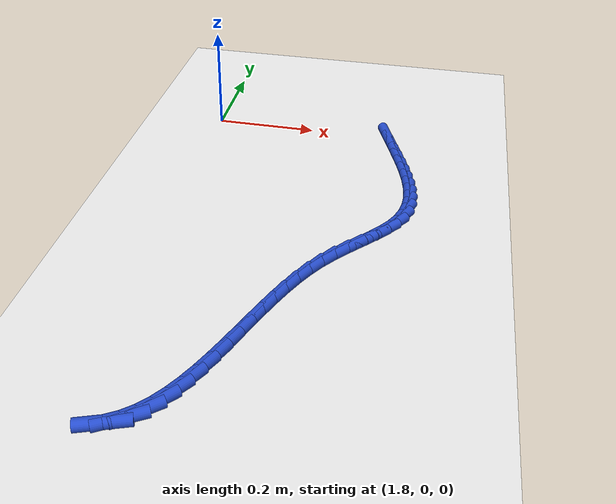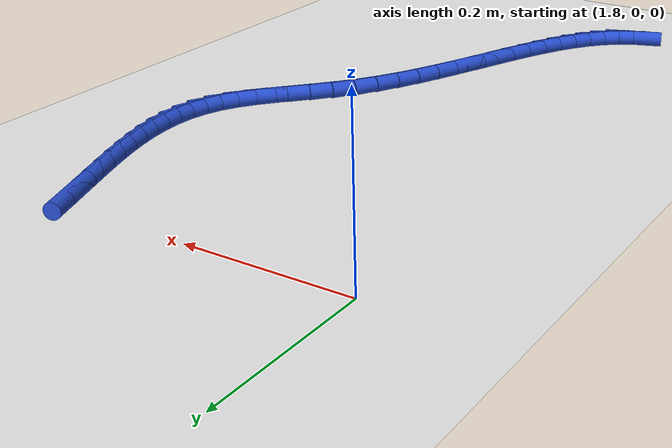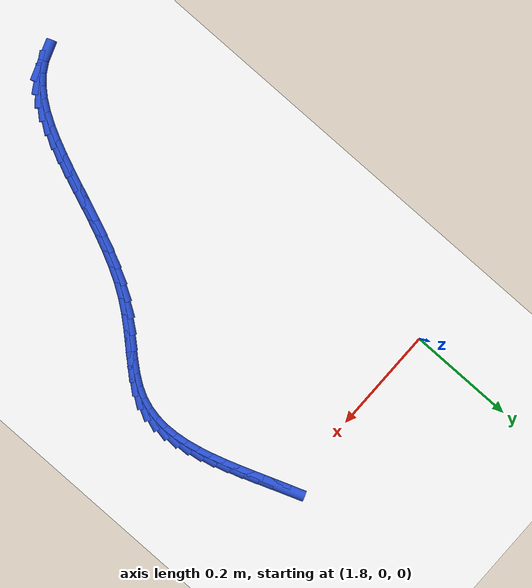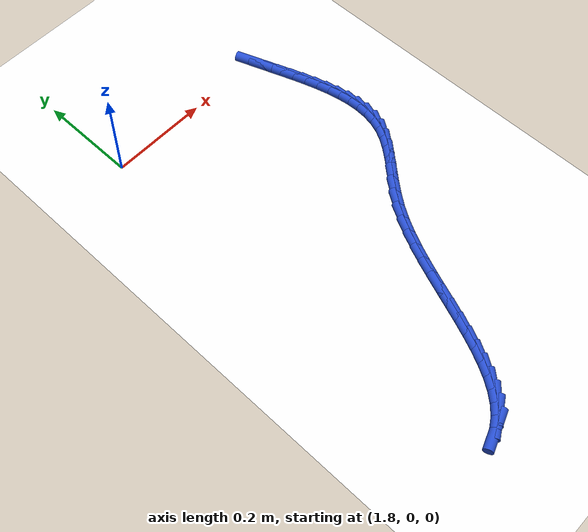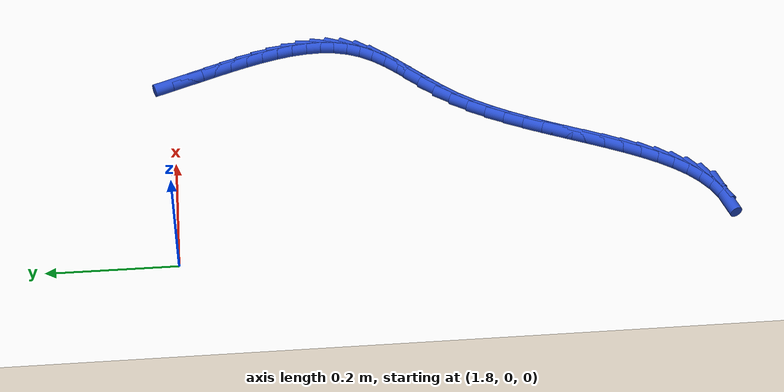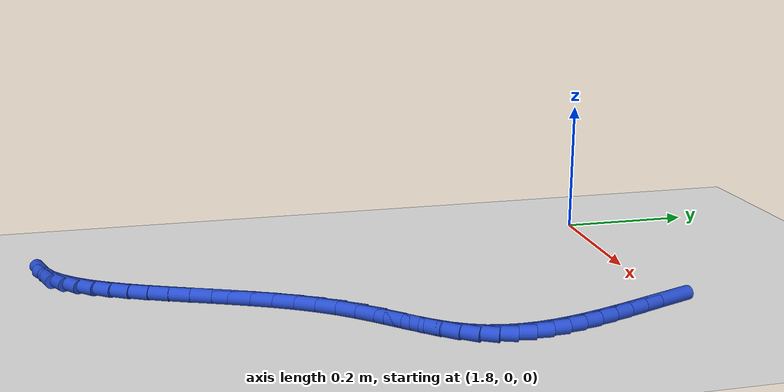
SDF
<sdf version="1.6">
 <world name="default">
  <model name="ground_plane">
   <static>1</static>
   <link name="link">
    <collision name="collision">
     <geometry><plane><normal>0 0 1</normal><size>100 100</size></plane></geometry>
     <surface><friction><ode><mu>100</mu><mu2>50</mu2></ode></friction></surface>
    </collision>
    <visual name="visual">
     <cast_shadows>0</cast_shadows>
     <geometry><plane><normal>0 0 1</normal><size>100 100</size></plane></geometry>
     <material>
      <script><uri>file://media/materials/scripts/gazebo.material</uri><name>Gazebo/WhiteGlow</name></script>
     </material>
    </visual>
   </link>
  </model>
  <model name="line">
   <link name="link_139">
    <pose>2.1594408791345914 -0.0069270119873001655 0.01 0 1.57 -1.221876624173199</pose>
    <collision name="collision">
     <geometry><cylinder><radius>0.01</radius><length>0.08</length></cylinder></geometry>
    </collision>
    <visual name="visual">
     <material>
      <script><name>Gazebo/Blue</name><uri>file://media/materials/scripts/gazebo.material</uri></script>
     </material>
     <geometry><cylinder><radius>0.01</radius><length>0.08</length></cylinder></geometry>
    </visual>
   </link>
   <link name="link_140">
    <pose>2.1694202808281142 -0.034357665709475085 0.01 0 1.57 -1.219690596151822</pose>
    <collision name="collision">
     <geometry><cylinder><radius>0.01</radius><length>0.08</length></cylinder></geometry>
    </collision>
    <visual name="visual">
     <material>
      <script><name>Gazebo/Blue</name><uri>file://media/materials/scripts/gazebo.material</uri></script>
     </material>
     <geometry><cylinder><radius>0.01</radius><length>0.08</length></cylinder></geometry>
    </visual>
   </link>
   <link name="link_141">
    <pose>2.1793073650528063 -0.06135075421853981 0.01 0 1.57 -1.2271023218623611</pose>
    <collision name="collision">
     <geometry><cylinder><radius>0.01</radius><length>0.08</length></cylinder></geometry>
    </collision>
    <visual name="visual">
     <material>
      <script><name>Gazebo/Blue</name><uri>file://media/materials/scripts/gazebo.material</uri></script>
     </material>
     <geometry><cylinder><radius>0.01</radius><length>0.08</length></cylinder></geometry>
    </visual>
   </link>
   <link name="link_142">
    <pose>2.1888005033595586 -0.08787541539835497 0.01 0 1.57 -1.2448175884491137</pose>
    <collision name="collision">
     <geometry><cylinder><radius>0.01</radius><length>0.08</length></cylinder></geometry>
    </collision>
    <visual name="visual">
     <material>
      <script><name>Gazebo/Blue</name><uri>file://media/materials/scripts/gazebo.material</uri></script>
     </material>
     <geometry><cylinder><radius>0.01</radius><length>0.08</length></cylinder></geometry>
    </visual>
   </link>
   <link name="link_143">
    <pose>2.197598067299262 -0.11390078713278073 0.01 0 1.57 -1.2738862621349742</pose>
    <collision name="collision">
     <geometry><cylinder><radius>0.01</radius><length>0.08</length></cylinder></geometry>
    </collision>
    <visual name="visual">
     <material>
      <script><name>Gazebo/Blue</name><uri>file://media/materials/scripts/gazebo.material</uri></script>
     </material>
     <geometry><cylinder><radius>0.01</radius><length>0.08</length></cylinder></geometry>
    </visual>
   </link>
   <link name="link_144">
    <pose>2.2053984284228068 -0.13939600730567736 0.01 0 1.57 -1.3157283079231916</pose>
    <collision name="collision">
     <geometry><cylinder><radius>0.01</radius><length>0.08</length></cylinder></geometry>
    </collision>
    <visual name="visual">
     <material>
      <script><name>Gazebo/Blue</name><uri>file://media/materials/scripts/gazebo.material</uri></script>
     </material>
     <geometry><cylinder><radius>0.01</radius><length>0.08</length></cylinder></geometry>
    </visual>
   </link>
   <link name="link_145">
    <pose>2.2118999582810845 -0.16433021380090512 0.01 0 1.57 -1.3721132191907</pose>
    <collision name="collision">
     <geometry><cylinder><radius>0.01</radius><length>0.08</length></cylinder></geometry>
    </collision>
    <visual name="visual">
     <material>
      <script><name>Gazebo/Blue</name><uri>file://media/materials/scripts/gazebo.material</uri></script>
     </material>
     <geometry><cylinder><radius>0.01</radius><length>0.08</length></cylinder></geometry>
    </visual>
   </link>
   <link name="link_146">
    <pose>2.216801028424986 -0.18867254450232482 0.01 0 1.57 -1.4450288560595679</pose>
    <collision name="collision">
     <geometry><cylinder><radius>0.01</radius><length>0.08</length></cylinder></geometry>
    </collision>
    <visual name="visual">
     <material>
      <script><name>Gazebo/Blue</name><uri>file://media/materials/scripts/gazebo.material</uri></script>
     </material>
     <geometry><cylinder><radius>0.01</radius><length>0.08</length></cylinder></geometry>
    </visual>
   </link>
   <link name="link_147">
    <pose>2.219800010405403 -0.2123921372937953 0.01 0 1.57 -1.5363321489758395</pose>
    <collision name="collision">
     <geometry><cylinder><radius>0.01</radius><length>0.08</length></cylinder></geometry>
    </collision>
    <visual name="visual">
     <material>
      <script><name>Gazebo/Blue</name><uri>file://media/materials/scripts/gazebo.material</uri></script>
     </material>
     <geometry><cylinder><radius>0.01</radius><length>0.08</length></cylinder></geometry>
    </visual>
   </link>
   <link name="link_148">
    <pose>2.2205952757732255 -0.23545813005917754 0.01 0 1.57 1.494538648122432</pose>
    <collision name="collision">
     <geometry><cylinder><radius>0.01</radius><length>0.08</length></cylinder></geometry>
    </collision>
    <visual name="visual">
     <material>
      <script><name>Gazebo/Blue</name><uri>file://media/materials/scripts/gazebo.material</uri></script>
     </material>
     <geometry><cylinder><radius>0.01</radius><length>0.08</length></cylinder></geometry>
    </visual>
   </link>
   <link name="link_149">
    <pose>2.2188851960793445 -0.25783966068233155 0.01 0 1.57 1.3652567267571938</pose>
    <collision name="collision">
     <geometry><cylinder><radius>0.01</radius><length>0.08</length></cylinder></geometry>
    </collision>
    <visual name="visual">
     <material>
      <script><name>Gazebo/Blue</name><uri>file://media/materials/scripts/gazebo.material</uri></script>
     </material>
     <geometry><cylinder><radius>0.01</radius><length>0.08</length></cylinder></geometry>
    </visual>
   </link>
   <link name="link_150">
    <pose>2.2143681428746516 -0.2795058670471178 0.01 0 1.57 1.2212497702752323</pose>
    <collision name="collision">
     <geometry><cylinder><radius>0.01</radius><length>0.08</length></cylinder></geometry>
    </collision>
    <visual name="visual">
     <material>
      <script><name>Gazebo/Blue</name><uri>file://media/materials/scripts/gazebo.material</uri></script>
     </material>
     <geometry><cylinder><radius>0.01</radius><length>0.08</length></cylinder></geometry>
    </visual>
   </link>
   <link name="link_151">
    <pose>2.2067424877100374 -0.3004258870373965 0.01 0 1.57 1.0714104292153046</pose>
    <collision name="collision">
     <geometry><cylinder><radius>0.01</radius><length>0.08</length></cylinder></geometry>
    </collision>
    <visual name="visual">
     <material>
      <script><name>Gazebo/Blue</name><uri>file://media/materials/scripts/gazebo.material</uri></script>
     </material>
     <geometry><cylinder><radius>0.01</radius><length>0.08</length></cylinder></geometry>
    </visual>
   </link>
   <link name="link_152">
    <pose>2.1957457017478577 -0.3205847826304877 0.01 0 1.57 0.9494021349346081</pose>
    <collision name="collision">
     <geometry><cylinder><radius>0.01</radius><length>0.08</length></cylinder></geometry>
    </collision>
    <visual name="visual">
     <material>
      <script><name>Gazebo/Blue</name><uri>file://media/materials/scripts/gazebo.material</uri></script>
     </material>
     <geometry><cylinder><radius>0.01</radius><length>0.08</length></cylinder></geometry>
    </visual>
   </link>
   <link name="link_153">
    <pose>2.1816974972866783 -0.34020474507231463 0.01 0 1.57 0.8731731282826846</pose>
    <collision name="collision">
     <geometry><cylinder><radius>0.01</radius><length>0.08</length></cylinder></geometry>
    </collision>
    <visual name="visual">
     <material>
      <script><name>Gazebo/Blue</name><uri>file://media/materials/scripts/gazebo.material</uri></script>
     </material>
     <geometry><cylinder><radius>0.01</radius><length>0.08</length></cylinder></geometry>
    </visual>
   </link>
   <link name="link_154">
    <pose>2.165364366760667 -0.359689925694051 0.01 0 1.57 0.8363931859632858</pose>
    <collision name="collision">
     <geometry><cylinder><radius>0.01</radius><length>0.08</length></cylinder></geometry>
    </collision>
    <visual name="visual">
     <material>
      <script><name>Gazebo/Blue</name><uri>file://media/materials/scripts/gazebo.material</uri></script>
     </material>
     <geometry><cylinder><radius>0.01</radius><length>0.08</length></cylinder></geometry>
    </visual>
   </link>
   <link name="link_155">
    <pose>2.147524213031143 -0.3794491229499913 0.01 0 1.57 0.8333663763315095</pose>
    <collision name="collision">
     <geometry><cylinder><radius>0.01</radius><length>0.08</length></cylinder></geometry>
    </collision>
    <visual name="visual">
     <material>
      <script><name>Gazebo/Blue</name><uri>file://media/materials/scripts/gazebo.material</uri></script>
     </material>
     <geometry><cylinder><radius>0.01</radius><length>0.08</length></cylinder></geometry>
    </visual>
   </link>
   <link name="link_156">
    <pose>2.1289549389594296 -0.39989113529442816 0.01 0 1.57 0.8604833215205558</pose>
    <collision name="collision">
     <geometry><cylinder><radius>0.01</radius><length>0.08</length></cylinder></geometry>
    </collision>
    <visual name="visual">
     <material>
      <script><name>Gazebo/Blue</name><uri>file://media/materials/scripts/gazebo.material</uri></script>
     </material>
     <geometry><cylinder><radius>0.01</radius><length>0.08</length></cylinder></geometry>
    </visual>
   </link>
   <link name="link_157">
    <pose>2.1104344474068477 -0.42142476118165606 0.01 0 1.57 0.9157741758638981</pose>
    <collision name="collision">
     <geometry><cylinder><radius>0.01</radius><length>0.08</length></cylinder></geometry>
    </collision>
    <visual name="visual">
     <material>
      <script><name>Gazebo/Blue</name><uri>file://media/materials/scripts/gazebo.material</uri></script>
     </material>
     <geometry><cylinder><radius>0.01</radius><length>0.08</length></cylinder></geometry>
    </visual>
   </link>
   <link name="link_158">
    <pose>2.0927406379289795 -0.444458796561938 0.01 0 1.57 0.9903090074524011</pose>
    <collision name="collision">
     <geometry><cylinder><radius>0.01</radius><length>0.08</length></cylinder></geometry>
    </collision>
    <visual name="visual">
     <material>
      <script><name>Gazebo/Blue</name><uri>file://media/materials/scripts/gazebo.material</uri></script>
     </material>
     <geometry><cylinder><radius>0.01</radius><length>0.08</length></cylinder></geometry>
    </visual>
   </link>
   <link name="link_159">
    <pose>2.076470908896569 -0.46926531132787436 0.01 0 1.57 1.055703261460799</pose>
    <collision name="collision">
     <geometry><cylinder><radius>0.01</radius><length>0.08</length></cylinder></geometry>
    </collision>
    <visual name="visual">
     <material>
      <script><name>Gazebo/Blue</name><uri>file://media/materials/scripts/gazebo.material</uri></script>
     </material>
     <geometry><cylinder><radius>0.01</radius><length>0.08</length></cylinder></geometry>
    </visual>
   </link>
   <link name="link_160">
    <pose>2.0615569288566746 -0.4956120982708298 0.01 0 1.57 1.1068380268186273</pose>
    <collision name="collision">
     <geometry><cylinder><radius>0.01</radius><length>0.08</length></cylinder></geometry>
    </collision>
    <visual name="visual">
     <material>
      <script><name>Gazebo/Blue</name><uri>file://media/materials/scripts/gazebo.material</uri></script>
     </material>
     <geometry><cylinder><radius>0.01</radius><length>0.08</length></cylinder></geometry>
    </visual>
   </link>
   <link name="link_161">
    <pose>2.0477769218273125 -0.5231507190031633 0.01 0 1.57 1.145135980214772</pose>
    <collision name="collision">
     <geometry><cylinder><radius>0.01</radius><length>0.08</length></cylinder></geometry>
    </collision>
    <visual name="visual">
     <material>
      <script><name>Gazebo/Blue</name><uri>file://media/materials/scripts/gazebo.material</uri></script>
     </material>
     <geometry><cylinder><radius>0.01</radius><length>0.08</length></cylinder></geometry>
    </visual>
   </link>
   <link name="link_162">
    <pose>2.0349091118264995 -0.5515327351372342 0.01 0 1.57 1.1717250264498134</pose>
    <collision name="collision">
     <geometry><cylinder><radius>0.01</radius><length>0.08</length></cylinder></geometry>
    </collision>
    <visual name="visual">
     <material>
      <script><name>Gazebo/Blue</name><uri>file://media/materials/scripts/gazebo.material</uri></script>
     </material>
     <geometry><cylinder><radius>0.01</radius><length>0.08</length></cylinder></geometry>
    </visual>
   </link>
   <link name="link_163">
    <pose>2.022731722872252 -0.5804097082854016 0.01 0 1.57 1.1873425819669947</pose>
    <collision name="collision">
     <geometry><cylinder><radius>0.01</radius><length>0.08</length></cylinder></geometry>
    </collision>
    <visual name="visual">
     <material>
      <script><name>Gazebo/Blue</name><uri>file://media/materials/scripts/gazebo.material</uri></script>
     </material>
     <geometry><cylinder><radius>0.01</radius><length>0.08</length></cylinder></geometry>
    </visual>
   </link>
   <link name="link_164">
    <pose>2.011022978982586 -0.6094332000600255 0.01 0 1.57 1.192288191499968</pose>
    <collision name="collision">
     <geometry><cylinder><radius>0.01</radius><length>0.08</length></cylinder></geometry>
    </collision>
    <visual name="visual">
     <material>
      <script><name>Gazebo/Blue</name><uri>file://media/materials/scripts/gazebo.material</uri></script>
     </material>
     <geometry><cylinder><radius>0.01</radius><length>0.08</length></cylinder></geometry>
    </visual>
   </link>
   <link name="link_165">
    <pose>1.9995611041755197 -0.6382547720734636 0.01 0 1.57 1.1863839704140082</pose>
    <collision name="collision">
     <geometry><cylinder><radius>0.01</radius><length>0.08</length></cylinder></geometry>
    </collision>
    <visual name="visual">
     <material>
      <script><name>Gazebo/Blue</name><uri>file://media/materials/scripts/gazebo.material</uri></script>
     </material>
     <geometry><cylinder><radius>0.01</radius><length>0.08</length></cylinder></geometry>
    </visual>
   </link>
   <link name="link_166">
    <pose>1.988124322469068 -0.6665259859380755 0.01 0 1.57 1.1689198859501833</pose>
    <collision name="collision">
     <geometry><cylinder><radius>0.01</radius><length>0.08</length></cylinder></geometry>
    </collision>
    <visual name="visual">
     <material>
      <script><name>Gazebo/Blue</name><uri>file://media/materials/scripts/gazebo.material</uri></script>
     </material>
     <geometry><cylinder><radius>0.01</radius><length>0.08</length></cylinder></geometry>
    </visual>
   </link>
   <link name="link_167">
    <pose>1.9764908578812477 -0.6938984032662209 0.01 0 1.57 1.138573262005292</pose>
    <collision name="collision">
     <geometry><cylinder><radius>0.01</radius><length>0.08</length></cylinder></geometry>
    </collision>
    <visual name="visual">
     <material>
      <script><name>Gazebo/Blue</name><uri>file://media/materials/scripts/gazebo.material</uri></script>
     </material>
     <geometry><cylinder><radius>0.01</radius><length>0.08</length></cylinder></geometry>
    </visual>
   </link>
   <link name="link_168">
    <pose>1.9644389344300757 -0.7200235856702586 0.01 0 1.57 1.0933068291753607</pose>
    <collision name="collision">
     <geometry><cylinder><radius>0.01</radius><length>0.08</length></cylinder></geometry>
    </collision>
    <visual name="visual">
     <material>
      <script><name>Gazebo/Blue</name><uri>file://media/materials/scripts/gazebo.material</uri></script>
     </material>
     <geometry><cylinder><radius>0.01</radius><length>0.08</length></cylinder></geometry>
    </visual>
   </link>
   <link name="link_169">
    <pose>1.951746776133568 -0.7445530947625479 0.01 0 1.57 1.030281419996326</pose>
    <collision name="collision">
     <geometry><cylinder><radius>0.01</radius><length>0.08</length></cylinder></geometry>
    </collision>
    <visual name="visual">
     <material>
      <script><name>Gazebo/Blue</name><uri>file://media/materials/scripts/gazebo.material</uri></script>
     </material>
     <geometry><cylinder><radius>0.01</radius><length>0.08</length></cylinder></geometry>
    </visual>
   </link>
   <link name="link_170">
    <pose>1.9381926070097413 -0.7671384921554478 0.01 0 1.57 0.945894131642435</pose>
    <collision name="collision">
     <geometry><cylinder><radius>0.01</radius><length>0.08</length></cylinder></geometry>
    </collision>
    <visual name="visual">
     <material>
      <script><name>Gazebo/Blue</name><uri>file://media/materials/scripts/gazebo.material</uri></script>
     </material>
     <geometry><cylinder><radius>0.01</radius><length>0.08</length></cylinder></geometry>
    </visual>
   </link>
   <link name="link_171">
    <pose>1.9235546510766124 -0.7874313394613179 0.01 0 1.57 0.8362048533037474</pose>
    <collision name="collision">
     <geometry><cylinder><radius>0.01</radius><length>0.08</length></cylinder></geometry>
    </collision>
    <visual name="visual">
     <material>
      <script><name>Gazebo/Blue</name><uri>file://media/materials/scripts/gazebo.material</uri></script>
     </material>
     <geometry><cylinder><radius>0.01</radius><length>0.08</length></cylinder></geometry>
    </visual>
   </link>
   <link name="link_172">
    <pose>1.9076111323521978 -0.8050831982925171 0.01 0 1.57 0.6982204318201233</pose>
    <collision name="collision">
     <geometry><cylinder><radius>0.01</radius><length>0.08</length></cylinder></geometry>
    </collision>
    <visual name="visual">
     <material>
      <script><name>Gazebo/Blue</name><uri>file://media/materials/scripts/gazebo.material</uri></script>
     </material>
     <geometry><cylinder><radius>0.01</radius><length>0.08</length></cylinder></geometry>
    </visual>
   </link>
   <link name="link_173">
    <pose>1.8901402748545135 -0.819745630261405 0.01 0 1.57 0.5324466180183578</pose>
    <collision name="collision">
     <geometry><cylinder><radius>0.01</radius><length>0.08</length></cylinder></geometry>
    </collision>
    <visual name="visual">
     <material>
      <script><name>Gazebo/Blue</name><uri>file://media/materials/scripts/gazebo.material</uri></script>
     </material>
     <geometry><cylinder><radius>0.01</radius><length>0.08</length></cylinder></geometry>
    </visual>
   </link>
   <link name="link_174">
    <pose>1.8709203026015762 -0.8310701969803398 0.01 0 1.57 0.34595458433810217</pose>
    <collision name="collision">
     <geometry><cylinder><radius>0.01</radius><length>0.08</length></cylinder></geometry>
    </collision>
    <visual name="visual">
     <material>
      <script><name>Gazebo/Blue</name><uri>file://media/materials/scripts/gazebo.material</uri></script>
     </material>
     <geometry><cylinder><radius>0.01</radius><length>0.08</length></cylinder></geometry>
    </visual>
   </link>
  </model>
 </world>
</sdf>
